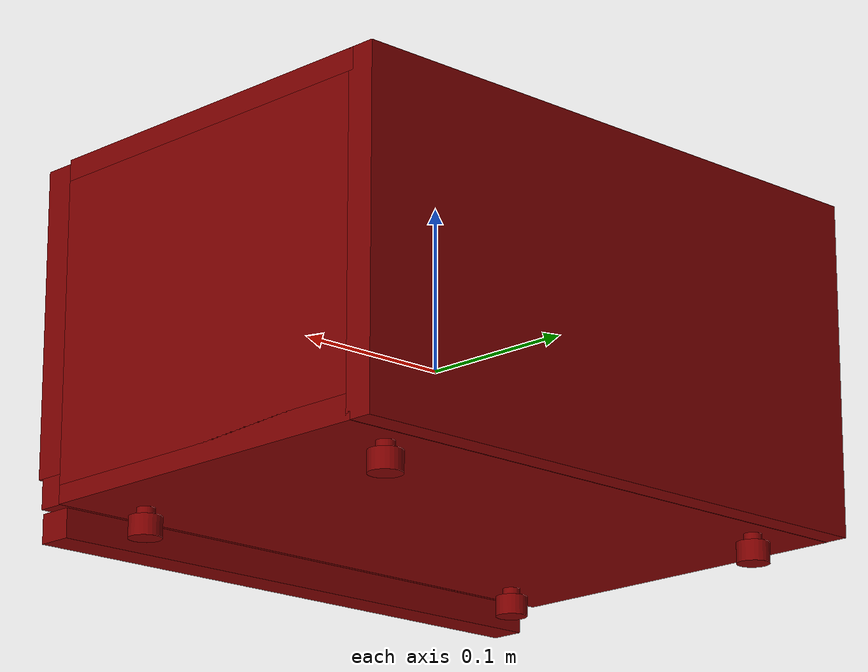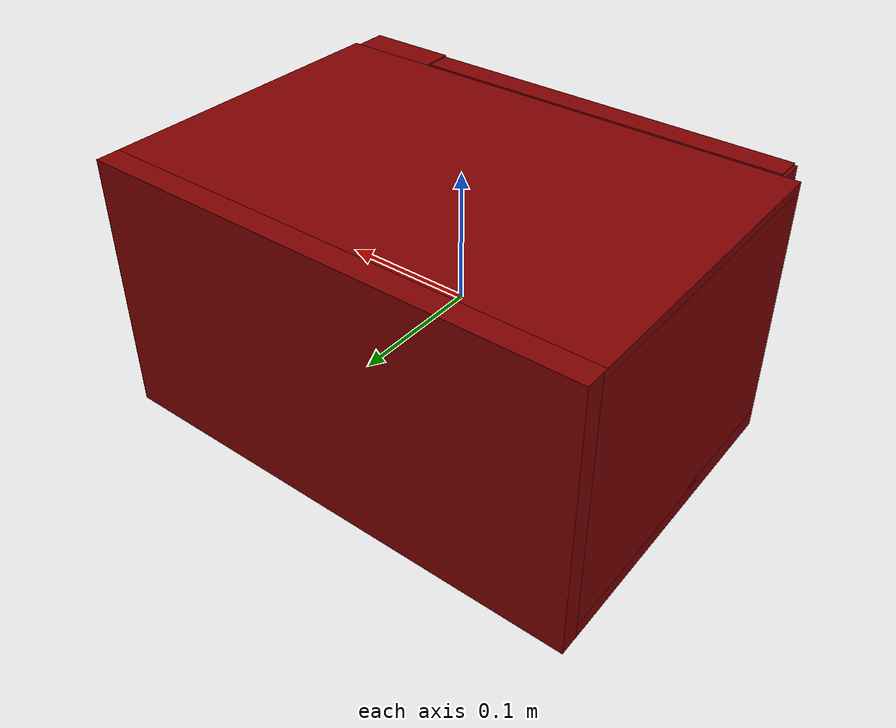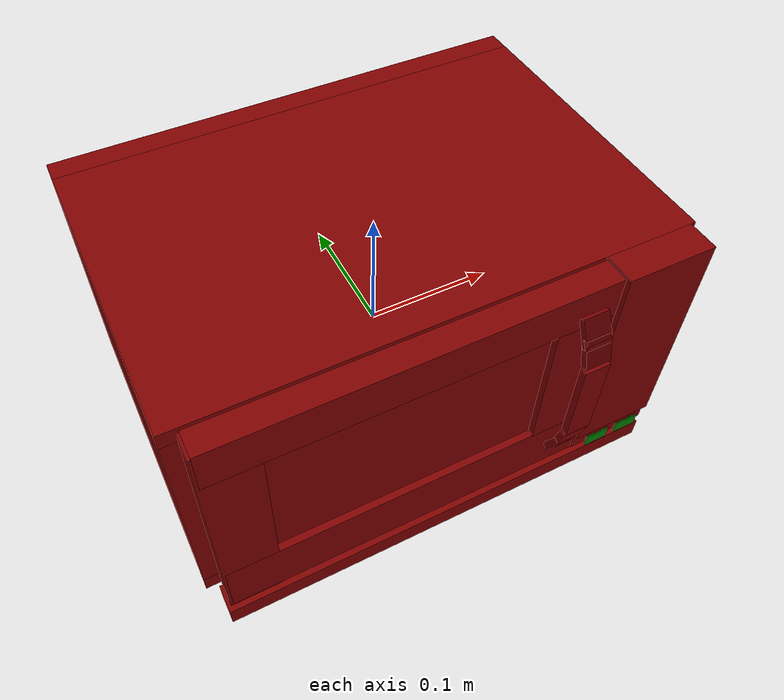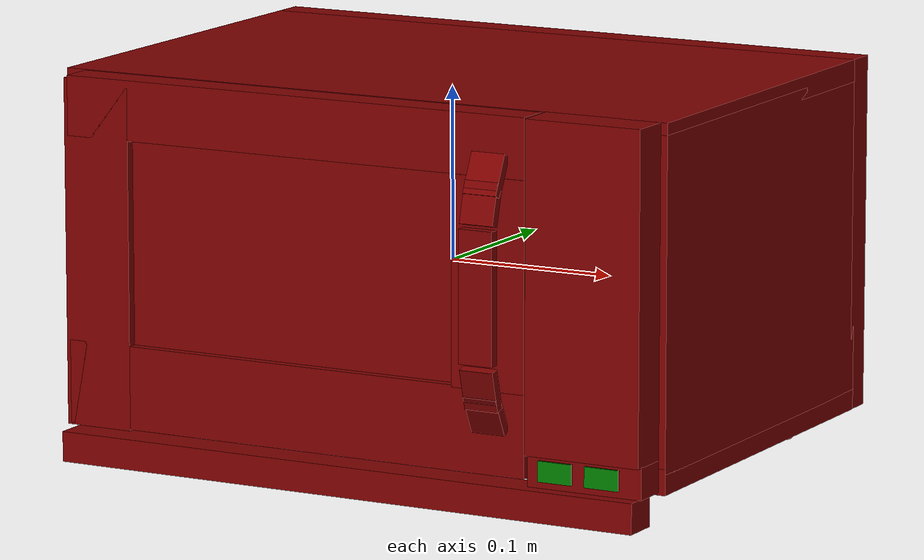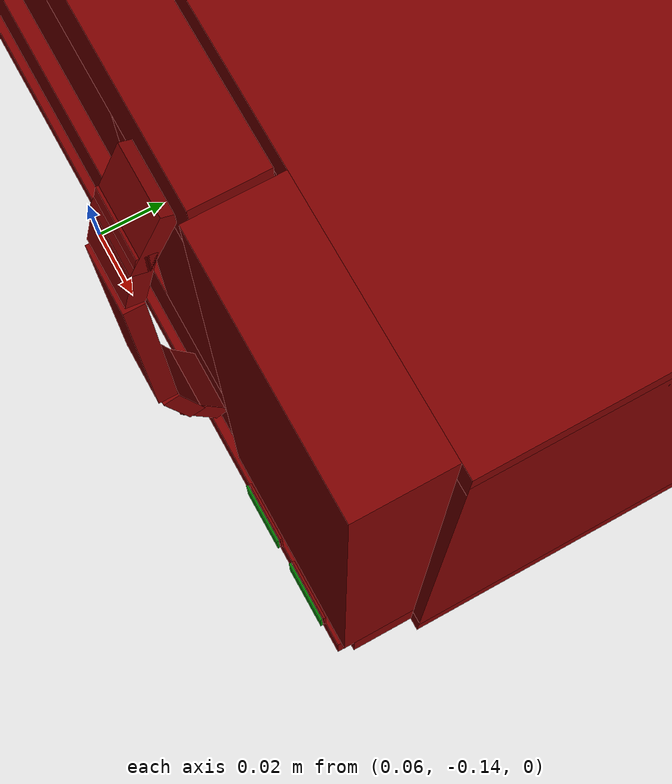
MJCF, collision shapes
<mujoco model="model">
  <compiler angle="radian"/>
  <asset>
    <mesh file="visuals/door.obj" name="door_vis"/>
    <mesh file="visuals/door_Clear.obj" name="door_Clear_vis"/>
    <mesh file="visuals/Body001.obj" name="Body001_vis"/>
    <mesh file="visuals/Button001.obj" name="Button001_vis"/>
    <mesh file="visuals/Button002.obj" name="Button002_vis"/>
    <mesh file="visuals/Disc001.obj" name="Disc001_vis"/>
    <texture file="visuals/T_BC001.png" name="Body001_material" type="2d"/>
    <material name="Body001_material" rgba="1 1 1 1.0" texture="Body001_material" shininess="0.5" specular="0.3103448502657381"/>
    <texture file="visuals/T_BC001.png" name="door_material" type="2d"/>
    <material name="door_material" rgba="1 1 1 1.0" texture="door_material" shininess="0.5" specular="0.3103448502657381"/>
    <texture file="visuals/T_BC001.png" name="door_Clear_material" type="2d"/>
    <material name="door_Clear_material" rgba="1 1 1 0.800000011920929" texture="door_Clear_material" shininess="0.5" specular="0.3103448502657381"/>
    <texture file="visuals/T_BC001.png" name="Button001_material" type="2d"/>
    <material name="Button001_material" rgba="1 1 1 1.0" texture="Button001_material" shininess="0.5" specular="0.3103448502657381"/>
    <texture file="visuals/T_BC001.png" name="Button002_material" type="2d"/>
    <material name="Button002_material" rgba="1 1 1 1.0" texture="Button002_material" shininess="0.5" specular="0.3103448502657381"/>
    <texture file="visuals/T_BC001.png" name="Disc001_material" type="2d"/>
    <material name="Disc001_material" rgba="1 1 1 1.0" texture="Disc001_material" shininess="0.5" specular="0.3103448502657381"/>
  </asset>
  <default>
    <default class="visual">
      <geom conaffinity="0" contype="0" group="1" type="mesh"/>
    </default>
    <default class="collision">
      <geom group="0" rgba="0.5 0 0 0.5"/>
    </default>
    <default class="spawn">
      <geom group="0" rgba="1 1 1 0.5" contype="0" conaffinity="0"/>
      <site group="0" rgba="1 1 1 0.5"/>
    </default>
    <default class="region">
      <geom group="1" conaffinity="0" contype="0" rgba="0 1 0 0"/>
    </default>
  </default>
  <worldbody>
    <body>
      <body name="object">
        <geom class="collision" type="box" pos="0.1352001279592514 -0.13322357833385468 -0.08135627210140228" size="0.005824075546115637 0.010172710753977299 0.0003700616071000695" quat="0.5000001192092896 0.5 0.5 -0.49999991059303284" name="start_button" rgba="0.0 0.5 0 0.5"/>
        <geom class="collision" type="box" pos="0.16349804401397705 -0.13322357833385468 -0.0813826471567154" size="0.005824075546115637 0.010172710753977299 0.0003700616071000695" quat="0.5000001192092896 0.5 0.5 -0.49999991059303284" name="stop_button" rgba="0.0 0.5 0 0.5"/>
        <geom class="collision" type="box" pos="-0.027930717915296555 0.013678012415766716 -0.06657543778419495" size="0.09347977489233017 0.09347977489233017 0.0029405569657683372" quat="1.0 0.0 0.0 0.0" name="tray" rgba="0 1 0 0.5"/>
        <geom mesh="Body001_vis" type="mesh" solimp="0.998 0.998 0.001" solref="0.001 1" density="100" friction="0.95 0.3 0.1" class="visual" material="Body001_material"/>
        <geom class="collision" type="box" pos="3.6733860572318786e-19 0.1392287164926529 0.008797567337751389" size="0.1887902021408081 0.008900445885956287 0.10201916843652725" quat="1.0 0.0 0.0 0.0"/>
        <geom class="collision" type="box" pos="-1.749039656274385e-17 0.013364982791244984 0.10439372062683105" size="0.1887902021408081 0.0064230142161250114 0.12027779221534729" quat="0.7071068286895752 0.7071067690849304 -1.5700924318127872e-16 -5.9269340452702814e-24"/>
        <geom class="collision" type="box" pos="-1.7693476020570517e-17 0.013364982791244984 -0.08606642484664917" size="0.1887902021408081 0.0073376065120100975 0.12027779221534729" quat="0.7071068286895752 0.7071067690849304 -1.5700924318127872e-16 -5.9269340452702814e-24"/>
        <geom class="collision" type="box" pos="-0.18170376121997833 0.013364995829761028 0.010843664407730103" size="0.09318892657756805 0.007086432538926601 0.12027779221534729" quat="0.5000001192092896 0.5 0.5 -0.49999991059303284"/>
        <geom class="collision" type="box" pos="0.14794082939624786 0.013364995829761028 0.010843664407730103" size="0.09318891912698746 0.04084937646985054 0.12027779221534729" quat="0.5000001192092896 0.5 0.5 -0.49999991059303284"/>
        <geom class="collision" type="box" pos="0.0005320832133293152 -0.12044750154018402 -0.10210659354925156" size="0.18032747507095337 0.008710140362381935 0.010889299213886261" quat="0.7071068286895752 0.7071067690849304 -1.5700924318127872e-16 -5.9269340452702814e-24"/>
        <geom class="collision" type="box" pos="0.15028659999370575 -0.11884630471467972 0.018276775255799294" size="0.0925399512052536 0.03451690822839737 0.012490503489971161" quat="0.5000001192092896 0.5 0.5 -0.49999991059303284"/>
        <geom class="collision" type="box" pos="0.15028659999370575 -0.11738217622041702 -0.08299253135919571" size="0.009149594232439995 0.03451690822839737 0.010389814153313637" quat="0.5000001192092896 0.5 0.5 -0.49999991059303284"/>
        <geom class="collision" type="cylinder" pos="-0.14233261346817017 0.11679676920175552 -0.10459955781698227" size="0.009801078587770462 0.0062171695753932" quat="1.0 0.0 0.0 0.0"/>
        <geom class="collision" type="cylinder" pos="-0.14233261346817017 0.11679676920175552 -0.09607953578233719" size="0.00537894805893302 0.003486714791506529" quat="1.0 0.0 0.0 0.0"/>
        <geom class="collision" type="cylinder" pos="-0.14233261346817017 -0.07995424419641495 -0.10459955781698227" size="0.009801078587770462 0.0062171695753932" quat="1.0 0.0 0.0 0.0"/>
        <geom class="collision" type="cylinder" pos="-0.14233261346817017 -0.07995424419641495 -0.09607953578233719" size="0.00537894805893302 0.003486714791506529" quat="1.0 0.0 0.0 0.0"/>
        <geom class="collision" type="cylinder" pos="0.14829520881175995 0.11679676920175552 -0.10459955781698227" size="0.009801078587770462 0.0062171695753932" quat="1.0 0.0 0.0 0.0"/>
        <geom class="collision" type="cylinder" pos="0.14829520881175995 0.11679676920175552 -0.09607953578233719" size="0.00537894805893302 0.003486714791506529" quat="1.0 0.0 0.0 0.0"/>
        <geom class="collision" type="cylinder" pos="0.14829520881175995 -0.07995424419641495 -0.10459955781698227" size="0.009801078587770462 0.0062171695753932" quat="1.0 0.0 0.0 0.0"/>
        <geom class="collision" type="cylinder" pos="0.14829520881175995 -0.07995424419641495 -0.09607953578233719" size="0.00537894805893302 0.003486714791506529" quat="1.0 0.0 0.0 0.0"/>
        <body name="door">
          <joint axis="0.0 0.0 1.0" pos="-0.173231840133667 -0.11817753314971924 0.013097322545945644" limited="true" name="microjoint" range="-1.5707963267948966 0.0" type="hinge" damping="1" frictionloss="1" armature=".01" stiffness="0.05"/>
          <geom mesh="door_vis" type="mesh" solimp="0.998 0.998 0.001" solref="0.001 1" density="100" friction="0.95 0.3 0.1" class="visual" material="door_material"/>
          <geom class="collision" type="box" pos="-0.03072771616280079 -0.11891105771064758 0.09370417147874832" size="0.01711256057024002 0.1447415053844452 0.00979448389261961" quat="0.5000001192092896 0.5 0.5 -0.49999991059303284"/>
          <geom class="collision" type="box" pos="-0.03072771616280079 -0.11891105771064758 -0.06422703713178635" size="0.023924432694911957 0.1447415053844452 0.00979448389261961" quat="0.5000001192092896 0.5 0.5 -0.49999991059303284"/>
          <geom class="collision" type="box" pos="-0.15692567825317383 -0.11891105026006699 0.010151667520403862" size="0.020577382296323776 0.09918766468763351 0.00979448389261961" quat="1.8518180411319918e-07 9.017573177061422e-08 0.70710688829422 -0.7071066498756409"/>
          <geom class="collision" type="box" pos="0.09167501330375671 -0.11891105026006699 0.01748710870742798" size="0.02229299210011959 0.05904465913772583 0.00979448389261961" quat="1.8518180411319918e-07 9.017573177061422e-08 0.70710688829422 -0.7071066498756409"/>
          <geom class="collision" type="box" pos="0.09377014636993408 -0.13463523983955383 0.07878174632787704" size="0.010134530253708363 0.011907976120710373 0.0027676078025251627" quat="2.683683817394922e-07 6.164569299471623e-08 0.5308552980422974 -0.8474624752998352"/>
          <geom class="collision" type="box" pos="0.09377014636993408 -0.14023856818675995 0.06414446234703064" size="0.010134530253708363 0.011907976120710373 0.0027676078025251627" quat="1.7827966303229914e-07 1.0875286449163468e-07 0.6076867580413818 -0.7941768169403076"/>
          <geom class="collision" type="box" pos="0.09377014636993408 -0.13463523983955383 -0.05268882215023041" size="0.010134530253708363 0.011907976120710373 0.0027676078025251627" quat="0.5308551788330078 0.84746253490448 -2.065993527367027e-07 4.875902703815882e-08"/>
          <geom class="collision" type="box" pos="0.09377014636993408 -0.14023856818675995 -0.038051538169384" size="0.010134530253708363 0.011907976120710373 0.0027676078025251627" quat="0.6076866984367371 0.7941768765449524 -1.7942440422302752e-07 5.28370556196478e-08"/>
          <geom class="collision" type="box" pos="0.09377014636993408 -0.1439940482378006 0.01338508166372776" size="0.010134530253708363 0.03717058151960373 0.0030668778344988823" quat="1.8518180411319918e-07 9.017573177061422e-08 0.70710688829422 -0.7071066498756409" name="door_handle"/>
          <body name="door_Clear">
            <geom mesh="door_Clear_vis" type="mesh" solimp="0.998 0.998 0.001" solref="0.001 1" density="100" friction="0.95 0.3 0.1" class="visual" material="door_Clear_material"/>
            <geom class="collision" type="box" pos="-0.03000568598508835 -0.11822914332151413 0.013230564072728157" size="0.11054246127605438 0.06461625546216965 0.004908387549221516" quat="1.8518180411319918e-07 9.017573177061422e-08 0.70710688829422 -0.7071066498756409"/>
          </body>
        </body>
        <body name="Button001">
          <joint axis="0.0 1.0 0.0" pos="0.1352001279592514 -0.13211452960968018 -0.08135627210140228" limited="true" name="Button001_joint" range="0.0 0.0015" type="slide" damping="1" frictionloss="1" armature=".01" stiffness="0.05"/>
          <geom mesh="Button001_vis" type="mesh" solimp="0.998 0.998 0.001" solref="0.001 1" density="100" friction="0.95 0.3 0.1" class="visual" material="Button001_material"/>
          <geom class="collision" type="box" pos="0.1352001279592514 -0.13204219937324524 -0.08135627210140228" size="0.005824075546115637 0.010172710753977299 0.0003700616071000695" quat="0.5000001192092896 0.5 0.5 -0.49999991059303284"/>
        </body>
        <body name="Button002">
          <joint axis="0.0 1.0 0.0" pos="0.16349804401397705 -0.13211452960968018 -0.0813826471567154" limited="true" name="Button002_joint" range="0.0 0.0015" type="slide" damping="1" frictionloss="1" armature=".01" stiffness="0.05"/>
          <geom mesh="Button002_vis" type="mesh" solimp="0.998 0.998 0.001" solref="0.001 1" density="100" friction="0.95 0.3 0.1" class="visual" material="Button002_material"/>
          <geom class="collision" type="box" pos="0.16349804401397705 -0.13204219937324524 -0.0813826471567154" size="0.005824075546115637 0.010172710753977299 0.0003700616071000695" quat="0.5000001192092896 0.5 0.5 -0.49999991059303284"/>
        </body>
        <body name="Disc001">
          <joint axis="0.0 0.0 1.0" pos="-0.027930717915296555 0.013678012415766716 -0.07232203334569931" limited="false" name="Disc001_joint" range="0 360" type="hinge" damping="1" frictionloss="1" armature=".01" stiffness="0.05"/>
          <geom mesh="Disc001_vis" type="mesh" solimp="0.998 0.998 0.001" solref="0.001 1" density="100" friction="0.95 0.3 0.1" class="visual" material="Disc001_material"/>
          <geom class="collision" type="cylinder" pos="-0.027930717915296555 0.013678012415766716 -0.07381615042686462" size="0.09347977489233017 0.0029405569657683372" quat="1.0 0.0 0.0 0.0"/>
        </body>
        <geom class="region" name="reg_main" type="box" pos="0.0 0.00839618593454361 0.0" size="0.1887902021408081 0.1397329866886139 0.11081673204898834"/>
        <geom class="region" name="reg_int" type="box" pos="-0.03382830321788788 0.01892346888780594 0.008595835417509079" size="0.14019404351711273 0.11778191477060318 0.09034451469779015"/>
      </body>
    </body>
  </worldbody>
  <actuator>
    <motor name="microjoint_actuator" joint="microjoint" gear="10"/>
    <motor name="Button001_joint_actuator" joint="Button001_joint" gear="0.1"/>
    <motor name="Button002_joint_actuator" joint="Button002_joint" gear="0.1"/>
    <motor name="Disc001_joint_actuator" joint="Disc001_joint" gear="10"/>
  </actuator>
</mujoco>
